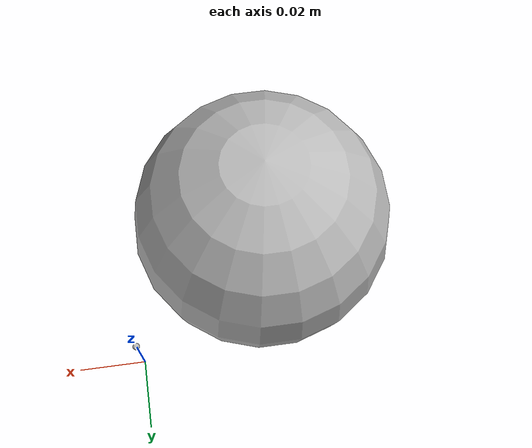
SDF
<?xml version="1.0" ?>
<sdf version="1.5">
  <model name="velodyne_hdl-32">
      <link name="base">
      <pose>-0.04267 -0.04267 0 0 0 -0.78535</pose>
        <inertial>
          <mass>0.1</mass>
          <inertia>
            <ixx>0.000090623</ixx>
            <iyy>0.000090623</iyy>
            <izz>0.000091036</izz>
            <ixy>0</ixy>
            <ixz>0</ixz>
            <iyz>0</iyz>
          </inertia>
        </inertial>
        <collision name="base_collision">
          <geometry>
            <sphere>
              <radius>0.04267</radius>
            </sphere>
          </geometry>
        </collision>

        <visual name="base_visual">
          <geometry>
            <sphere>
              <radius>0.04267</radius>
            </sphere>
          </geometry>
        </visual>
      </link>

      <link name="top">
      <pose>0 0 0.02133 0 0 0</pose>
        <inertial>
          <mass>0.0000000000001</mass>
          <inertia>
            <ixx>0.000090623</ixx>
            <iyy>0.000090623</iyy>
            <izz>0.000091036</izz>
            <ixy>0</ixy>
            <ixz>0</ixz>
            <iyz>0</iyz>
          </inertia>
        </inertial>
        <collision name="top_collision">
          <geometry>
            <sphere>
              <radius>0.001</radius>
            </sphere>
          </geometry>
        </collision>

        <visual name="top_visual">
          <geometry>
            <sphere>
              <radius>0.001</radius>
            </sphere>
          </geometry>
        </visual>
        <sensor type="ray" name="sensor">
          <pose>0 0 0 1.5707 0 0</pose>
          <visualize>true</visualize>
          <update_rate>30</update_rate>
          <ray>
            <scan>
              <horizontal>
                <samples>200</samples>
                <resolution>1</resolution>
                <min_angle>-0.78535</min_angle>
                <max_angle>0.78535</max_angle>
              </horizontal>
            </scan>
            <range>
              <min>0.05</min>
              <max>10</max>
              <resolution>0.02</resolution>
            </range>
          </ray>
        <plugin name="RayPlugin" filename="libRayPlugin.so">
          <modelName>velodyne_hdl-32</modelName>
          <linkName>top</linkName>
        </plugin>
        </sensor>
      </link>

      <joint type="ball" name="joint">
        <parent>base</parent>
        <child>top</child>
      </joint>
    </model>
</sdf>
